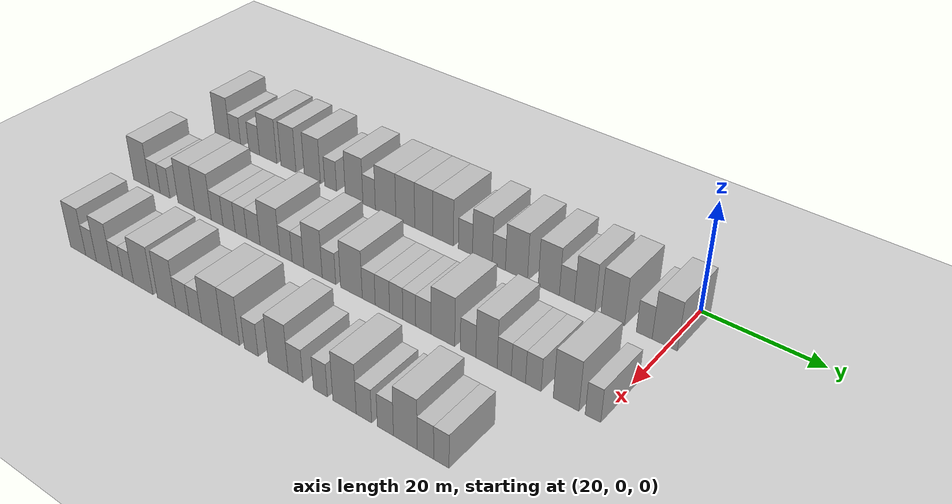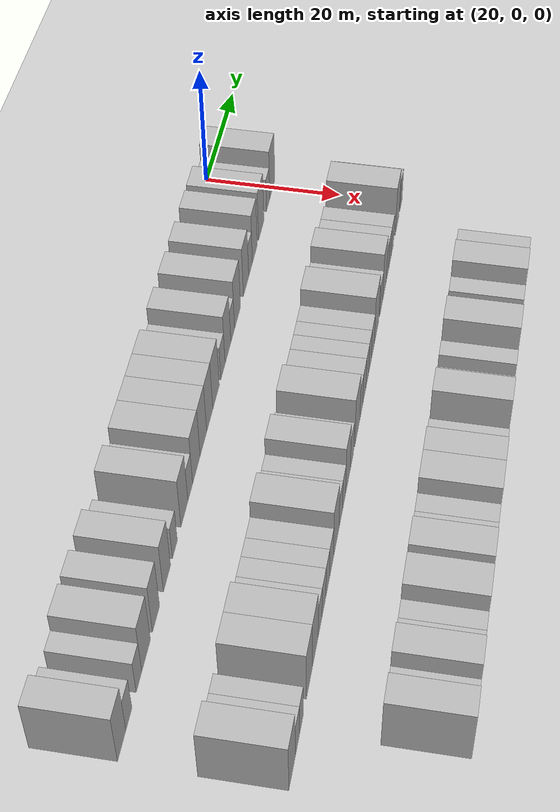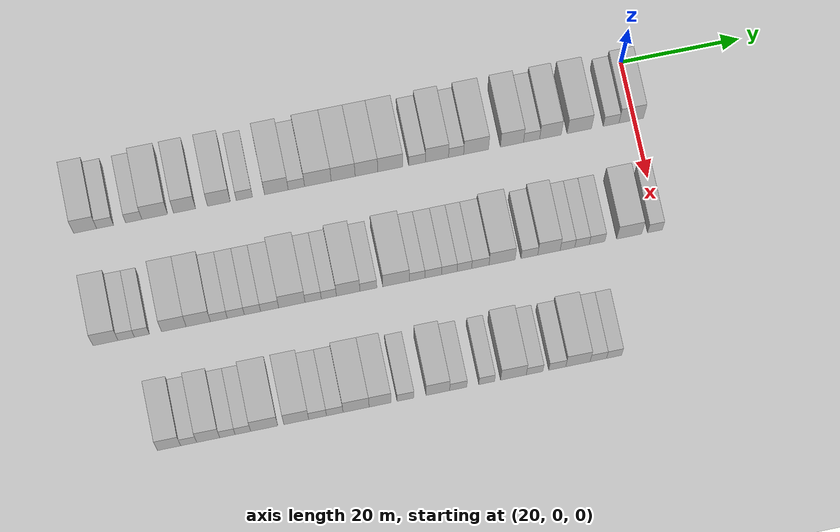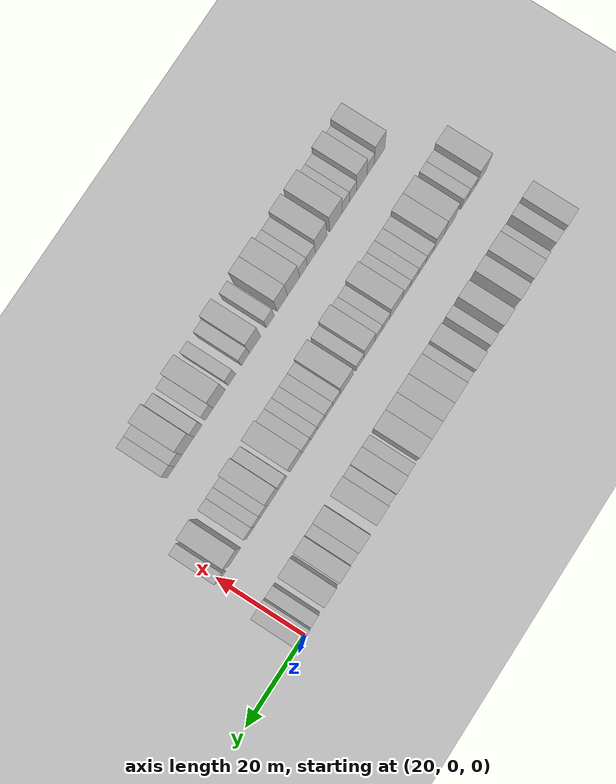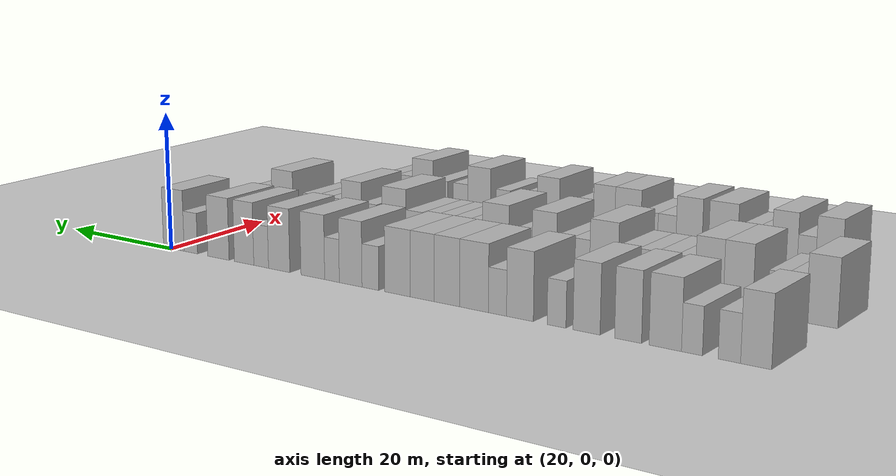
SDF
<sdf version="1.6">
 <world name="default">
  <include><name>ground_plane_1</name><uri>model://HANNAS_ground_plane</uri></include>
  <model name="building_55">
   <static>1</static>
   <pose>25.0000 -92.0047 0 0.000000 0.000000 0.000000</pose>
   <link name="link">
    <pose>0 0 4.50 0 0 0</pose>
    <collision name="collision"><geometry><box><size>10.0000 3.8348 9.0000</size></box></geometry></collision>
    <visual name="visual">
     <cast_shadows>0</cast_shadows>
     <geometry><box><size>10.0000 3.8348 9.0000</size></box></geometry>
     <material>
      <script>
       <uri>model://HANNAS_wall/materials/scripts</uri>
       <uri>model://HANNAS_wall/materials/textures</uri>
       <name>vrc/HANNAS_wall</name>
      </script>
     </material>
    </visual>
   </link>
  </model>
  <model name="building_56">
   <static>1</static>
   <pose>25.0000 -88.6778 0 0.000000 0.000000 0.000000</pose>
   <link name="link">
    <pose>0 0 3.00 0 0 0</pose>
    <collision name="collision"><geometry><box><size>10.0000 2.8190 6.0000</size></box></geometry></collision>
    <visual name="visual">
     <cast_shadows>0</cast_shadows>
     <geometry><box><size>10.0000 2.8190 6.0000</size></box></geometry>
     <material>
      <script>
       <uri>model://HANNAS_wall/materials/scripts</uri>
       <uri>model://HANNAS_wall/materials/textures</uri>
       <name>vrc/HANNAS_wall</name>
      </script>
     </material>
    </visual>
   </link>
  </model>
  <model name="building_57">
   <static>1</static>
   <pose>25.0000 -83.9104 0 0.000000 0.000000 0.000000</pose>
   <link name="link">
    <pose>0 0 3.00 0 0 0</pose>
    <collision name="collision"><geometry><box><size>10.0000 2.7158 6.0000</size></box></geometry></collision>
    <visual name="visual">
     <cast_shadows>0</cast_shadows>
     <geometry><box><size>10.0000 2.7158 6.0000</size></box></geometry>
     <material>
      <script>
       <uri>model://HANNAS_wall/materials/scripts</uri>
       <uri>model://HANNAS_wall/materials/textures</uri>
       <name>vrc/HANNAS_wall</name>
      </script>
     </material>
    </visual>
   </link>
  </model>
  <model name="building_58">
   <static>1</static>
   <pose>25.0000 -80.4101 0 0.000000 0.000000 0.000000</pose>
   <link name="link">
    <pose>0 0 4.50 0 0 0</pose>
    <collision name="collision"><geometry><box><size>10.0000 4.2849 9.0000</size></box></geometry></collision>
    <visual name="visual">
     <cast_shadows>0</cast_shadows>
     <geometry><box><size>10.0000 4.2849 9.0000</size></box></geometry>
     <material>
      <script>
       <uri>model://HANNAS_wall/materials/scripts</uri>
       <uri>model://HANNAS_wall/materials/textures</uri>
       <name>vrc/HANNAS_wall</name>
      </script>
     </material>
    </visual>
   </link>
  </model>
  <model name="building_59">
   <static>1</static>
   <pose>25.0000 -75.4380 0 0.000000 0.000000 0.000000</pose>
   <link name="link">
    <pose>0 0 4.50 0 0 0</pose>
    <collision name="collision"><geometry><box><size>10.0000 3.6594 9.0000</size></box></geometry></collision>
    <visual name="visual">
     <cast_shadows>0</cast_shadows>
     <geometry><box><size>10.0000 3.6594 9.0000</size></box></geometry>
     <material>
      <script>
       <uri>model://HANNAS_wall/materials/scripts</uri>
       <uri>model://HANNAS_wall/materials/textures</uri>
       <name>vrc/HANNAS_wall</name>
      </script>
     </material>
    </visual>
   </link>
  </model>
  <model name="building_60">
   <static>1</static>
   <pose>25.0000 -69.7093 0 0.000000 0.000000 0.000000</pose>
   <link name="link">
    <pose>0 0 4.50 0 0 0</pose>
    <collision name="collision"><geometry><box><size>10.0000 3.7979 9.0000</size></box></geometry></collision>
    <visual name="visual">
     <cast_shadows>0</cast_shadows>
     <geometry><box><size>10.0000 3.7979 9.0000</size></box></geometry>
     <material>
      <script>
       <uri>model://HANNAS_wall/materials/scripts</uri>
       <uri>model://HANNAS_wall/materials/textures</uri>
       <name>vrc/HANNAS_wall</name>
      </script>
     </material>
    </visual>
   </link>
  </model>
  <model name="building_61">
   <static>1</static>
   <pose>25.0000 -65.4548 0 0.000000 0.000000 0.000000</pose>
   <link name="link">
    <pose>0 0 3.00 0 0 0</pose>
    <collision name="collision"><geometry><box><size>10.0000 2.7111 6.0000</size></box></geometry></collision>
    <visual name="visual">
     <cast_shadows>0</cast_shadows>
     <geometry><box><size>10.0000 2.7111 6.0000</size></box></geometry>
     <material>
      <script>
       <uri>model://HANNAS_wall/materials/scripts</uri>
       <uri>model://HANNAS_wall/materials/textures</uri>
       <name>vrc/HANNAS_wall</name>
      </script>
     </material>
    </visual>
   </link>
  </model>
  <model name="building_62">
   <static>1</static>
   <pose>25.0000 -60.1167 0 0.000000 0.000000 0.000000</pose>
   <link name="link">
    <pose>0 0 4.50 0 0 0</pose>
    <collision name="collision"><geometry><box><size>10.0000 3.9651 9.0000</size></box></geometry></collision>
    <visual name="visual">
     <cast_shadows>0</cast_shadows>
     <geometry><box><size>10.0000 3.9651 9.0000</size></box></geometry>
     <material>
      <script>
       <uri>model://HANNAS_wall/materials/scripts</uri>
       <uri>model://HANNAS_wall/materials/textures</uri>
       <name>vrc/HANNAS_wall</name>
      </script>
     </material>
    </visual>
   </link>
  </model>
  <model name="building_63">
   <static>1</static>
   <pose>25.0000 -56.7659 0 0.000000 0.000000 0.000000</pose>
   <link name="link">
    <pose>0 0 3.00 0 0 0</pose>
    <collision name="collision"><geometry><box><size>10.0000 2.7365 6.0000</size></box></geometry></collision>
    <visual name="visual">
     <cast_shadows>0</cast_shadows>
     <geometry><box><size>10.0000 2.7365 6.0000</size></box></geometry>
     <material>
      <script>
       <uri>model://HANNAS_wall/materials/scripts</uri>
       <uri>model://HANNAS_wall/materials/textures</uri>
       <name>vrc/HANNAS_wall</name>
      </script>
     </material>
    </visual>
   </link>
  </model>
  <model name="building_64">
   <static>1</static>
   <pose>25.0000 -53.1716 0 0.000000 0.000000 0.000000</pose>
   <link name="link">
    <pose>0 0 4.50 0 0 0</pose>
    <collision name="collision"><geometry><box><size>10.0000 4.4522 9.0000</size></box></geometry></collision>
    <visual name="visual">
     <cast_shadows>0</cast_shadows>
     <geometry><box><size>10.0000 4.4522 9.0000</size></box></geometry>
     <material>
      <script>
       <uri>model://HANNAS_wall/materials/scripts</uri>
       <uri>model://HANNAS_wall/materials/textures</uri>
       <name>vrc/HANNAS_wall</name>
      </script>
     </material>
    </visual>
   </link>
  </model>
  <model name="building_65">
   <static>1</static>
   <pose>25.0000 -48.9378 0 0.000000 0.000000 0.000000</pose>
   <link name="link">
    <pose>0 0 4.50 0 0 0</pose>
    <collision name="collision"><geometry><box><size>10.0000 4.0152 9.0000</size></box></geometry></collision>
    <visual name="visual">
     <cast_shadows>0</cast_shadows>
     <geometry><box><size>10.0000 4.0152 9.0000</size></box></geometry>
     <material>
      <script>
       <uri>model://HANNAS_wall/materials/scripts</uri>
       <uri>model://HANNAS_wall/materials/textures</uri>
       <name>vrc/HANNAS_wall</name>
      </script>
     </material>
    </visual>
   </link>
  </model>
  <model name="building_66">
   <static>1</static>
   <pose>25.0000 -45.0341 0 0.000000 0.000000 0.000000</pose>
   <link name="link">
    <pose>0 0 4.50 0 0 0</pose>
    <collision name="collision"><geometry><box><size>10.0000 3.7922 9.0000</size></box></geometry></collision>
    <visual name="visual">
     <cast_shadows>0</cast_shadows>
     <geometry><box><size>10.0000 3.7922 9.0000</size></box></geometry>
     <material>
      <script>
       <uri>model://HANNAS_wall/materials/scripts</uri>
       <uri>model://HANNAS_wall/materials/textures</uri>
       <name>vrc/HANNAS_wall</name>
      </script>
     </material>
    </visual>
   </link>
  </model>
  <model name="building_67">
   <static>1</static>
   <pose>25.0000 -41.0500 0 0.000000 0.000000 0.000000</pose>
   <link name="link">
    <pose>0 0 4.50 0 0 0</pose>
    <collision name="collision"><geometry><box><size>10.0000 4.1761 9.0000</size></box></geometry></collision>
    <visual name="visual">
     <cast_shadows>0</cast_shadows>
     <geometry><box><size>10.0000 4.1761 9.0000</size></box></geometry>
     <material>
      <script>
       <uri>model://HANNAS_wall/materials/scripts</uri>
       <uri>model://HANNAS_wall/materials/textures</uri>
       <name>vrc/HANNAS_wall</name>
      </script>
     </material>
    </visual>
   </link>
  </model>
  <model name="building_68">
   <static>1</static>
   <pose>25.0000 -36.5539 0 0.000000 0.000000 0.000000</pose>
   <link name="link">
    <pose>0 0 3.00 0 0 0</pose>
    <collision name="collision"><geometry><box><size>10.0000 2.8160 6.0000</size></box></geometry></collision>
    <visual name="visual">
     <cast_shadows>0</cast_shadows>
     <geometry><box><size>10.0000 2.8160 6.0000</size></box></geometry>
     <material>
      <script>
       <uri>model://HANNAS_wall/materials/scripts</uri>
       <uri>model://HANNAS_wall/materials/textures</uri>
       <name>vrc/HANNAS_wall</name>
      </script>
     </material>
    </visual>
   </link>
  </model>
  <model name="building_69">
   <static>1</static>
   <pose>25.0000 -33.2091 0 0.000000 0.000000 0.000000</pose>
   <link name="link">
    <pose>0 0 4.50 0 0 0</pose>
    <collision name="collision"><geometry><box><size>10.0000 3.8737 9.0000</size></box></geometry></collision>
    <visual name="visual">
     <cast_shadows>0</cast_shadows>
     <geometry><box><size>10.0000 3.8737 9.0000</size></box></geometry>
     <material>
      <script>
       <uri>model://HANNAS_wall/materials/scripts</uri>
       <uri>model://HANNAS_wall/materials/textures</uri>
       <name>vrc/HANNAS_wall</name>
      </script>
     </material>
    </visual>
   </link>
  </model>
  <model name="building_70">
   <static>1</static>
   <pose>25.0000 -30.0039 0 0.000000 0.000000 0.000000</pose>
   <link name="link">
    <pose>0 0 3.00 0 0 0</pose>
    <collision name="collision"><geometry><box><size>10.0000 2.5367 6.0000</size></box></geometry></collision>
    <visual name="visual">
     <cast_shadows>0</cast_shadows>
     <geometry><box><size>10.0000 2.5367 6.0000</size></box></geometry>
     <material>
      <script>
       <uri>model://HANNAS_wall/materials/scripts</uri>
       <uri>model://HANNAS_wall/materials/textures</uri>
       <name>vrc/HANNAS_wall</name>
      </script>
     </material>
    </visual>
   </link>
  </model>
  <model name="building_71">
   <static>1</static>
   <pose>25.0000 -26.6469 0 0.000000 0.000000 0.000000</pose>
   <link name="link">
    <pose>0 0 4.50 0 0 0</pose>
    <collision name="collision"><geometry><box><size>10.0000 4.1772 9.0000</size></box></geometry></collision>
    <visual name="visual">
     <cast_shadows>0</cast_shadows>
     <geometry><box><size>10.0000 4.1772 9.0000</size></box></geometry>
     <material>
      <script>
       <uri>model://HANNAS_wall/materials/scripts</uri>
       <uri>model://HANNAS_wall/materials/textures</uri>
       <name>vrc/HANNAS_wall</name>
      </script>
     </material>
    </visual>
   </link>
  </model>
  <model name="building_72">
   <static>1</static>
   <pose>25.0000 -20.6169 0 0.000000 0.000000 0.000000</pose>
   <link name="link">
    <pose>0 0 4.50 0 0 0</pose>
    <collision name="collision"><geometry><box><size>10.0000 3.8827 9.0000</size></box></geometry></collision>
    <visual name="visual">
     <cast_shadows>0</cast_shadows>
     <geometry><box><size>10.0000 3.8827 9.0000</size></box></geometry>
     <material>
      <script>
       <uri>model://HANNAS_wall/materials/scripts</uri>
       <uri>model://HANNAS_wall/materials/textures</uri>
       <name>vrc/HANNAS_wall</name>
      </script>
     </material>
    </visual>
   </link>
  </model>
  <model name="building_73">
   <static>1</static>
   <pose>25.0000 -17.3195 0 0.000000 0.000000 0.000000</pose>
   <link name="link">
    <pose>0 0 3.00 0 0 0</pose>
    <collision name="collision"><geometry><box><size>10.0000 2.7122 6.0000</size></box></geometry></collision>
    <visual name="visual">
     <cast_shadows>0</cast_shadows>
     <geometry><box><size>10.0000 2.7122 6.0000</size></box></geometry>
     <material>
      <script>
       <uri>model://HANNAS_wall/materials/scripts</uri>
       <uri>model://HANNAS_wall/materials/textures</uri>
       <name>vrc/HANNAS_wall</name>
      </script>
     </material>
    </visual>
   </link>
  </model>
  <model name="building_74">
   <static>1</static>
   <pose>25.0000 -14.1417 0 0.000000 0.000000 0.000000</pose>
   <link name="link">
    <pose>0 0 4.50 0 0 0</pose>
    <collision name="collision"><geometry><box><size>10.0000 3.6433 9.0000</size></box></geometry></collision>
    <visual name="visual">
     <cast_shadows>0</cast_shadows>
     <geometry><box><size>10.0000 3.6433 9.0000</size></box></geometry>
     <material>
      <script>
       <uri>model://HANNAS_wall/materials/scripts</uri>
       <uri>model://HANNAS_wall/materials/textures</uri>
       <name>vrc/HANNAS_wall</name>
      </script>
     </material>
    </visual>
   </link>
  </model>
  <model name="building_75">
   <static>1</static>
   <pose>25.0000 -9.2744 0 0.000000 0.000000 0.000000</pose>
   <link name="link">
    <pose>0 0 4.50 0 0 0</pose>
    <collision name="collision"><geometry><box><size>10.0000 4.0913 9.0000</size></box></geometry></collision>
    <visual name="visual">
     <cast_shadows>0</cast_shadows>
     <geometry><box><size>10.0000 4.0913 9.0000</size></box></geometry>
     <material>
      <script>
       <uri>model://HANNAS_wall/materials/scripts</uri>
       <uri>model://HANNAS_wall/materials/textures</uri>
       <name>vrc/HANNAS_wall</name>
      </script>
     </material>
    </visual>
   </link>
  </model>
  <model name="building_76">
   <static>1</static>
   <pose>25.0000 -3.9061 0 0.000000 0.000000 0.000000</pose>
   <link name="link">
    <pose>0 0 3.00 0 0 0</pose>
    <collision name="collision"><geometry><box><size>10.0000 2.6454 6.0000</size></box></geometry></collision>
    <visual name="visual">
     <cast_shadows>0</cast_shadows>
     <geometry><box><size>10.0000 2.6454 6.0000</size></box></geometry>
     <material>
      <script>
       <uri>model://HANNAS_wall/materials/scripts</uri>
       <uri>model://HANNAS_wall/materials/textures</uri>
       <name>vrc/HANNAS_wall</name>
      </script>
     </material>
    </visual>
   </link>
  </model>
  <model name="building_77">
   <static>1</static>
   <pose>25.0000 -0.5194 0 0.000000 0.000000 0.000000</pose>
   <link name="link">
    <pose>0 0 4.50 0 0 0</pose>
    <collision name="collision"><geometry><box><size>10.0000 4.1279 9.0000</size></box></geometry></collision>
    <visual name="visual">
     <cast_shadows>0</cast_shadows>
     <geometry><box><size>10.0000 4.1279 9.0000</size></box></geometry>
     <material>
      <script>
       <uri>model://HANNAS_wall/materials/scripts</uri>
       <uri>model://HANNAS_wall/materials/textures</uri>
       <name>vrc/HANNAS_wall</name>
      </script>
     </material>
    </visual>
   </link>
  </model>
  <model name="building_232">
   <static>1</static>
   <pose>44.0000 -92.1461 0 0.000000 0.000000 0.000000</pose>
   <link name="link">
    <pose>0 0 4.50 0 0 0</pose>
    <collision name="collision"><geometry><box><size>10.0000 4.1497 9.0000</size></box></geometry></collision>
    <visual name="visual">
     <cast_shadows>0</cast_shadows>
     <geometry><box><size>10.0000 4.1497 9.0000</size></box></geometry>
     <material>
      <script>
       <uri>model://HANNAS_wall/materials/scripts</uri>
       <uri>model://HANNAS_wall/materials/textures</uri>
       <name>vrc/HANNAS_wall</name>
      </script>
     </material>
    </visual>
   </link>
  </model>
  <model name="building_233">
   <static>1</static>
   <pose>44.0000 -88.7218 0 0.000000 0.000000 0.000000</pose>
   <link name="link">
    <pose>0 0 3.00 0 0 0</pose>
    <collision name="collision"><geometry><box><size>10.0000 2.6990 6.0000</size></box></geometry></collision>
    <visual name="visual">
     <cast_shadows>0</cast_shadows>
     <geometry><box><size>10.0000 2.6990 6.0000</size></box></geometry>
     <material>
      <script>
       <uri>model://HANNAS_wall/materials/scripts</uri>
       <uri>model://HANNAS_wall/materials/textures</uri>
       <name>vrc/HANNAS_wall</name>
      </script>
     </material>
    </visual>
   </link>
  </model>
  <model name="building_234">
   <static>1</static>
   <pose>44.0000 -86.1381 0 0.000000 0.000000 0.000000</pose>
   <link name="link">
    <pose>0 0 3.00 0 0 0</pose>
    <collision name="collision"><geometry><box><size>10.0000 2.4685 6.0000</size></box></geometry></collision>
    <visual name="visual">
     <cast_shadows>0</cast_shadows>
     <geometry><box><size>10.0000 2.4685 6.0000</size></box></geometry>
     <material>
      <script>
       <uri>model://HANNAS_wall/materials/scripts</uri>
       <uri>model://HANNAS_wall/materials/textures</uri>
       <name>vrc/HANNAS_wall</name>
      </script>
     </material>
    </visual>
   </link>
  </model>
  <model name="building_235">
   <static>1</static>
   <pose>44.0000 -80.8618 0 0.000000 0.000000 0.000000</pose>
   <link name="link">
    <pose>0 0 4.50 0 0 0</pose>
    <collision name="collision"><geometry><box><size>10.0000 4.0841 9.0000</size></box></geometry></collision>
    <visual name="visual">
     <cast_shadows>0</cast_shadows>
     <geometry><box><size>10.0000 4.0841 9.0000</size></box></geometry>
     <material>
      <script>
       <uri>model://HANNAS_wall/materials/scripts</uri>
       <uri>model://HANNAS_wall/materials/textures</uri>
       <name>vrc/HANNAS_wall</name>
      </script>
     </material>
    </visual>
   </link>
  </model>
  <model name="building_236">
   <static>1</static>
   <pose>44.0000 -76.8111 0 0.000000 0.000000 0.000000</pose>
   <link name="link">
    <pose>0 0 4.50 0 0 0</pose>
    <collision name="collision"><geometry><box><size>10.0000 4.0174 9.0000</size></box></geometry></collision>
    <visual name="visual">
     <cast_shadows>0</cast_shadows>
     <geometry><box><size>10.0000 4.0174 9.0000</size></box></geometry>
     <material>
      <script>
       <uri>model://HANNAS_wall/materials/scripts</uri>
       <uri>model://HANNAS_wall/materials/textures</uri>
       <name>vrc/HANNAS_wall</name>
      </script>
     </material>
    </visual>
   </link>
  </model>
  <model name="building_237">
   <static>1</static>
   <pose>44.0000 -73.4099 0 0.000000 0.000000 0.000000</pose>
   <link name="link">
    <pose>0 0 3.00 0 0 0</pose>
    <collision name="collision"><geometry><box><size>10.0000 2.7848 6.0000</size></box></geometry></collision>
    <visual name="visual">
     <cast_shadows>0</cast_shadows>
     <geometry><box><size>10.0000 2.7848 6.0000</size></box></geometry>
     <material>
      <script>
       <uri>model://HANNAS_wall/materials/scripts</uri>
       <uri>model://HANNAS_wall/materials/textures</uri>
       <name>vrc/HANNAS_wall</name>
      </script>
     </material>
    </visual>
   </link>
  </model>
  <model name="building_238">
   <static>1</static>
   <pose>44.0000 -70.6049 0 0.000000 0.000000 0.000000</pose>
   <link name="link">
    <pose>0 0 3.00 0 0 0</pose>
    <collision name="collision"><geometry><box><size>10.0000 2.8253 6.0000</size></box></geometry></collision>
    <visual name="visual">
     <cast_shadows>0</cast_shadows>
     <geometry><box><size>10.0000 2.8253 6.0000</size></box></geometry>
     <material>
      <script>
       <uri>model://HANNAS_wall/materials/scripts</uri>
       <uri>model://HANNAS_wall/materials/textures</uri>
       <name>vrc/HANNAS_wall</name>
      </script>
     </material>
    </visual>
   </link>
  </model>
  <model name="building_239">
   <static>1</static>
   <pose>44.0000 -67.8445 0 0.000000 0.000000 0.000000</pose>
   <link name="link">
    <pose>0 0 3.00 0 0 0</pose>
    <collision name="collision"><geometry><box><size>10.0000 2.6955 6.0000</size></box></geometry></collision>
    <visual name="visual">
     <cast_shadows>0</cast_shadows>
     <geometry><box><size>10.0000 2.6955 6.0000</size></box></geometry>
     <material>
      <script>
       <uri>model://HANNAS_wall/materials/scripts</uri>
       <uri>model://HANNAS_wall/materials/textures</uri>
       <name>vrc/HANNAS_wall</name>
      </script>
     </material>
    </visual>
   </link>
  </model>
  <model name="building_240">
   <static>1</static>
   <pose>44.0000 -65.0004 0 0.000000 0.000000 0.000000</pose>
   <link name="link">
    <pose>0 0 3.00 0 0 0</pose>
    <collision name="collision"><geometry><box><size>10.0000 2.9927 6.0000</size></box></geometry></collision>
    <visual name="visual">
     <cast_shadows>0</cast_shadows>
     <geometry><box><size>10.0000 2.9927 6.0000</size></box></geometry>
     <material>
      <script>
       <uri>model://HANNAS_wall/materials/scripts</uri>
       <uri>model://HANNAS_wall/materials/textures</uri>
       <name>vrc/HANNAS_wall</name>
      </script>
     </material>
    </visual>
   </link>
  </model>
  <model name="building_241">
   <static>1</static>
   <pose>44.0000 -61.3182 0 0.000000 0.000000 0.000000</pose>
   <link name="link">
    <pose>0 0 4.50 0 0 0</pose>
    <collision name="collision"><geometry><box><size>10.0000 4.3716 9.0000</size></box></geometry></collision>
    <visual name="visual">
     <cast_shadows>0</cast_shadows>
     <geometry><box><size>10.0000 4.3716 9.0000</size></box></geometry>
     <material>
      <script>
       <uri>model://HANNAS_wall/materials/scripts</uri>
       <uri>model://HANNAS_wall/materials/textures</uri>
       <name>vrc/HANNAS_wall</name>
      </script>
     </material>
    </visual>
   </link>
  </model>
  <model name="building_242">
   <static>1</static>
   <pose>44.0000 -57.7804 0 0.000000 0.000000 0.000000</pose>
   <link name="link">
    <pose>0 0 3.00 0 0 0</pose>
    <collision name="collision"><geometry><box><size>10.0000 2.7040 6.0000</size></box></geometry></collision>
    <visual name="visual">
     <cast_shadows>0</cast_shadows>
     <geometry><box><size>10.0000 2.7040 6.0000</size></box></geometry>
     <material>
      <script>
       <uri>model://HANNAS_wall/materials/scripts</uri>
       <uri>model://HANNAS_wall/materials/textures</uri>
       <name>vrc/HANNAS_wall</name>
      </script>
     </material>
    </visual>
   </link>
  </model>
  <model name="building_243">
   <static>1</static>
   <pose>44.0000 -55.1755 0 0.000000 0.000000 0.000000</pose>
   <link name="link">
    <pose>0 0 3.00 0 0 0</pose>
    <collision name="collision"><geometry><box><size>10.0000 2.5058 6.0000</size></box></geometry></collision>
    <visual name="visual">
     <cast_shadows>0</cast_shadows>
     <geometry><box><size>10.0000 2.5058 6.0000</size></box></geometry>
     <material>
      <script>
       <uri>model://HANNAS_wall/materials/scripts</uri>
       <uri>model://HANNAS_wall/materials/textures</uri>
       <name>vrc/HANNAS_wall</name>
      </script>
     </material>
    </visual>
   </link>
  </model>
  <model name="building_244">
   <static>1</static>
   <pose>44.0000 -51.9624 0 0.000000 0.000000 0.000000</pose>
   <link name="link">
    <pose>0 0 4.50 0 0 0</pose>
    <collision name="collision"><geometry><box><size>10.0000 3.9205 9.0000</size></box></geometry></collision>
    <visual name="visual">
     <cast_shadows>0</cast_shadows>
     <geometry><box><size>10.0000 3.9205 9.0000</size></box></geometry>
     <material>
      <script>
       <uri>model://HANNAS_wall/materials/scripts</uri>
       <uri>model://HANNAS_wall/materials/textures</uri>
       <name>vrc/HANNAS_wall</name>
      </script>
     </material>
    </visual>
   </link>
  </model>
  <model name="building_245">
   <static>1</static>
   <pose>44.0000 -48.5975 0 0.000000 0.000000 0.000000</pose>
   <link name="link">
    <pose>0 0 3.00 0 0 0</pose>
    <collision name="collision"><geometry><box><size>10.0000 2.8093 6.0000</size></box></geometry></collision>
    <visual name="visual">
     <cast_shadows>0</cast_shadows>
     <geometry><box><size>10.0000 2.8093 6.0000</size></box></geometry>
     <material>
      <script>
       <uri>model://HANNAS_wall/materials/scripts</uri>
       <uri>model://HANNAS_wall/materials/textures</uri>
       <name>vrc/HANNAS_wall</name>
      </script>
     </material>
    </visual>
   </link>
  </model>
  <model name="building_246">
   <static>1</static>
   <pose>44.0000 -43.9951 0 0.000000 0.000000 0.000000</pose>
   <link name="link">
    <pose>0 0 4.50 0 0 0</pose>
    <collision name="collision"><geometry><box><size>10.0000 4.3953 9.0000</size></box></geometry></collision>
    <visual name="visual">
     <cast_shadows>0</cast_shadows>
     <geometry><box><size>10.0000 4.3953 9.0000</size></box></geometry>
     <material>
      <script>
       <uri>model://HANNAS_wall/materials/scripts</uri>
       <uri>model://HANNAS_wall/materials/textures</uri>
       <name>vrc/HANNAS_wall</name>
      </script>
     </material>
    </visual>
   </link>
  </model>
  <model name="building_247">
   <static>1</static>
   <pose>44.0000 -40.5078 0 0.000000 0.000000 0.000000</pose>
   <link name="link">
    <pose>0 0 3.00 0 0 0</pose>
    <collision name="collision"><geometry><box><size>10.0000 2.5794 6.0000</size></box></geometry></collision>
    <visual name="visual">
     <cast_shadows>0</cast_shadows>
     <geometry><box><size>10.0000 2.5794 6.0000</size></box></geometry>
     <material>
      <script>
       <uri>model://HANNAS_wall/materials/scripts</uri>
       <uri>model://HANNAS_wall/materials/textures</uri>
       <name>vrc/HANNAS_wall</name>
      </script>
     </material>
    </visual>
   </link>
  </model>
  <model name="building_248">
   <static>1</static>
   <pose>44.0000 -37.8111 0 0.000000 0.000000 0.000000</pose>
   <link name="link">
    <pose>0 0 3.00 0 0 0</pose>
    <collision name="collision"><geometry><box><size>10.0000 2.8139 6.0000</size></box></geometry></collision>
    <visual name="visual">
     <cast_shadows>0</cast_shadows>
     <geometry><box><size>10.0000 2.8139 6.0000</size></box></geometry>
     <material>
      <script>
       <uri>model://HANNAS_wall/materials/scripts</uri>
       <uri>model://HANNAS_wall/materials/textures</uri>
       <name>vrc/HANNAS_wall</name>
      </script>
     </material>
    </visual>
   </link>
  </model>
  <model name="building_249">
   <static>1</static>
   <pose>44.0000 -35.1178 0 0.000000 0.000000 0.000000</pose>
   <link name="link">
    <pose>0 0 3.00 0 0 0</pose>
    <collision name="collision"><geometry><box><size>10.0000 2.5728 6.0000</size></box></geometry></collision>
    <visual name="visual">
     <cast_shadows>0</cast_shadows>
     <geometry><box><size>10.0000 2.5728 6.0000</size></box></geometry>
     <material>
      <script>
       <uri>model://HANNAS_wall/materials/scripts</uri>
       <uri>model://HANNAS_wall/materials/textures</uri>
       <name>vrc/HANNAS_wall</name>
      </script>
     </material>
    </visual>
   </link>
  </model>
  <model name="building_250">
   <static>1</static>
   <pose>44.0000 -32.6200 0 0.000000 0.000000 0.000000</pose>
   <link name="link">
    <pose>0 0 3.00 0 0 0</pose>
    <collision name="collision"><geometry><box><size>10.0000 2.4228 6.0000</size></box></geometry></collision>
    <visual name="visual">
     <cast_shadows>0</cast_shadows>
     <geometry><box><size>10.0000 2.4228 6.0000</size></box></geometry>
     <material>
      <script>
       <uri>model://HANNAS_wall/materials/scripts</uri>
       <uri>model://HANNAS_wall/materials/textures</uri>
       <name>vrc/HANNAS_wall</name>
      </script>
     </material>
    </visual>
   </link>
  </model>
  <model name="building_251">
   <static>1</static>
   <pose>44.0000 -29.9630 0 0.000000 0.000000 0.000000</pose>
   <link name="link">
    <pose>0 0 3.00 0 0 0</pose>
    <collision name="collision"><geometry><box><size>10.0000 2.8912 6.0000</size></box></geometry></collision>
    <visual name="visual">
     <cast_shadows>0</cast_shadows>
     <geometry><box><size>10.0000 2.8912 6.0000</size></box></geometry>
     <material>
      <script>
       <uri>model://HANNAS_wall/materials/scripts</uri>
       <uri>model://HANNAS_wall/materials/textures</uri>
       <name>vrc/HANNAS_wall</name>
      </script>
     </material>
    </visual>
   </link>
  </model>
  <model name="building_252">
   <static>1</static>
   <pose>44.0000 -26.3432 0 0.000000 0.000000 0.000000</pose>
   <link name="link">
    <pose>0 0 4.50 0 0 0</pose>
    <collision name="collision"><geometry><box><size>10.0000 4.3484 9.0000</size></box></geometry></collision>
    <visual name="visual">
     <cast_shadows>0</cast_shadows>
     <geometry><box><size>10.0000 4.3484 9.0000</size></box></geometry>
     <material>
      <script>
       <uri>model://HANNAS_wall/materials/scripts</uri>
       <uri>model://HANNAS_wall/materials/textures</uri>
       <name>vrc/HANNAS_wall</name>
      </script>
     </material>
    </visual>
   </link>
  </model>
  <model name="building_253">
   <static>1</static>
   <pose>44.0000 -21.7752 0 0.000000 0.000000 0.000000</pose>
   <link name="link">
    <pose>0 0 3.00 0 0 0</pose>
    <collision name="collision"><geometry><box><size>10.0000 2.7875 6.0000</size></box></geometry></collision>
    <visual name="visual">
     <cast_shadows>0</cast_shadows>
     <geometry><box><size>10.0000 2.7875 6.0000</size></box></geometry>
     <material>
      <script>
       <uri>model://HANNAS_wall/materials/scripts</uri>
       <uri>model://HANNAS_wall/materials/textures</uri>
       <name>vrc/HANNAS_wall</name>
      </script>
     </material>
    </visual>
   </link>
  </model>
  <model name="building_254">
   <static>1</static>
   <pose>44.0000 -18.5149 0 0.000000 0.000000 0.000000</pose>
   <link name="link">
    <pose>0 0 4.50 0 0 0</pose>
    <collision name="collision"><geometry><box><size>10.0000 3.7332 9.0000</size></box></geometry></collision>
    <visual name="visual">
     <cast_shadows>0</cast_shadows>
     <geometry><box><size>10.0000 3.7332 9.0000</size></box></geometry>
     <material>
      <script>
       <uri>model://HANNAS_wall/materials/scripts</uri>
       <uri>model://HANNAS_wall/materials/textures</uri>
       <name>vrc/HANNAS_wall</name>
      </script>
     </material>
    </visual>
   </link>
  </model>
  <model name="building_255">
   <static>1</static>
   <pose>44.0000 -15.4252 0 0.000000 0.000000 0.000000</pose>
   <link name="link">
    <pose>0 0 3.00 0 0 0</pose>
    <collision name="collision"><geometry><box><size>10.0000 2.4463 6.0000</size></box></geometry></collision>
    <visual name="visual">
     <cast_shadows>0</cast_shadows>
     <geometry><box><size>10.0000 2.4463 6.0000</size></box></geometry>
     <material>
      <script>
       <uri>model://HANNAS_wall/materials/scripts</uri>
       <uri>model://HANNAS_wall/materials/textures</uri>
       <name>vrc/HANNAS_wall</name>
      </script>
     </material>
    </visual>
   </link>
  </model>
  <model name="building_256">
   <static>1</static>
   <pose>44.0000 -12.9975 0 0.000000 0.000000 0.000000</pose>
   <link name="link">
    <pose>0 0 3.00 0 0 0</pose>
    <collision name="collision"><geometry><box><size>10.0000 2.4092 6.0000</size></box></geometry></collision>
    <visual name="visual">
     <cast_shadows>0</cast_shadows>
     <geometry><box><size>10.0000 2.4092 6.0000</size></box></geometry>
     <material>
      <script>
       <uri>model://HANNAS_wall/materials/scripts</uri>
       <uri>model://HANNAS_wall/materials/textures</uri>
       <name>vrc/HANNAS_wall</name>
      </script>
     </material>
    </visual>
   </link>
  </model>
  <model name="building_257">
   <static>1</static>
   <pose>44.0000 -10.4841 0 0.000000 0.000000 0.000000</pose>
   <link name="link">
    <pose>0 0 3.00 0 0 0</pose>
    <collision name="collision"><geometry><box><size>10.0000 2.6175 6.0000</size></box></geometry></collision>
    <visual name="visual">
     <cast_shadows>0</cast_shadows>
     <geometry><box><size>10.0000 2.6175 6.0000</size></box></geometry>
     <material>
      <script>
       <uri>model://HANNAS_wall/materials/scripts</uri>
       <uri>model://HANNAS_wall/materials/textures</uri>
       <name>vrc/HANNAS_wall</name>
      </script>
     </material>
    </visual>
   </link>
  </model>
  <model name="building_258">
   <static>1</static>
   <pose>44.0000 -5.0906 0 0.000000 0.000000 0.000000</pose>
   <link name="link">
    <pose>0 0 4.50 0 0 0</pose>
    <collision name="collision"><geometry><box><size>10.0000 4.1695 9.0000</size></box></geometry></collision>
    <visual name="visual">
     <cast_shadows>0</cast_shadows>
     <geometry><box><size>10.0000 4.1695 9.0000</size></box></geometry>
     <material>
      <script>
       <uri>model://HANNAS_wall/materials/scripts</uri>
       <uri>model://HANNAS_wall/materials/textures</uri>
       <name>vrc/HANNAS_wall</name>
      </script>
     </material>
    </visual>
   </link>
  </model>
  <model name="building_259">
   <static>1</static>
   <pose>44.0000 -0.7762 0 0.000000 0.000000 0.000000</pose>
   <link name="link">
    <pose>0 0 3.00 0 0 0</pose>
    <collision name="collision"><geometry><box><size>10.0000 2.4594 6.0000</size></box></geometry></collision>
    <visual name="visual">
     <cast_shadows>0</cast_shadows>
     <geometry><box><size>10.0000 2.4594 6.0000</size></box></geometry>
     <material>
      <script>
       <uri>model://HANNAS_wall/materials/scripts</uri>
       <uri>model://HANNAS_wall/materials/textures</uri>
       <name>vrc/HANNAS_wall</name>
      </script>
     </material>
    </visual>
   </link>
  </model>
  <model name="building_391">
   <static>1</static>
   <pose>63.0000 -85.2837 0 0.000000 0.000000 0.000000</pose>
   <link name="link">
    <pose>0 0 4.50 0 0 0</pose>
    <collision name="collision"><geometry><box><size>10.0000 3.8033 9.0000</size></box></geometry></collision>
    <visual name="visual">
     <cast_shadows>0</cast_shadows>
     <geometry><box><size>10.0000 3.8033 9.0000</size></box></geometry>
     <material>
      <script>
       <uri>model://HANNAS_wall/materials/scripts</uri>
       <uri>model://HANNAS_wall/materials/textures</uri>
       <name>vrc/HANNAS_wall</name>
      </script>
     </material>
    </visual>
   </link>
  </model>
  <model name="building_392">
   <static>1</static>
   <pose>63.0000 -82.0651 0 0.000000 0.000000 0.000000</pose>
   <link name="link">
    <pose>0 0 3.00 0 0 0</pose>
    <collision name="collision"><geometry><box><size>10.0000 2.6340 6.0000</size></box></geometry></collision>
    <visual name="visual">
     <cast_shadows>0</cast_shadows>
     <geometry><box><size>10.0000 2.6340 6.0000</size></box></geometry>
     <material>
      <script>
       <uri>model://HANNAS_wall/materials/scripts</uri>
       <uri>model://HANNAS_wall/materials/textures</uri>
       <name>vrc/HANNAS_wall</name>
      </script>
     </material>
    </visual>
   </link>
  </model>
  <model name="building_393">
   <static>1</static>
   <pose>63.0000 -78.8591 0 0.000000 0.000000 0.000000</pose>
   <link name="link">
    <pose>0 0 4.50 0 0 0</pose>
    <collision name="collision"><geometry><box><size>10.0000 3.7778 9.0000</size></box></geometry></collision>
    <visual name="visual">
     <cast_shadows>0</cast_shadows>
     <geometry><box><size>10.0000 3.7778 9.0000</size></box></geometry>
     <material>
      <script>
       <uri>model://HANNAS_wall/materials/scripts</uri>
       <uri>model://HANNAS_wall/materials/textures</uri>
       <name>vrc/HANNAS_wall</name>
      </script>
     </material>
    </visual>
   </link>
  </model>
  <model name="building_394">
   <static>1</static>
   <pose>63.0000 -75.7006 0 0.000000 0.000000 0.000000</pose>
   <link name="link">
    <pose>0 0 3.00 0 0 0</pose>
    <collision name="collision"><geometry><box><size>10.0000 2.5393 6.0000</size></box></geometry></collision>
    <visual name="visual">
     <cast_shadows>0</cast_shadows>
     <geometry><box><size>10.0000 2.5393 6.0000</size></box></geometry>
     <material>
      <script>
       <uri>model://HANNAS_wall/materials/scripts</uri>
       <uri>model://HANNAS_wall/materials/textures</uri>
       <name>vrc/HANNAS_wall</name>
      </script>
     </material>
    </visual>
   </link>
  </model>
  <model name="building_395">
   <static>1</static>
   <pose>63.0000 -73.1567 0 0.000000 0.000000 0.000000</pose>
   <link name="link">
    <pose>0 0 3.00 0 0 0</pose>
    <collision name="collision"><geometry><box><size>10.0000 2.5484 6.0000</size></box></geometry></collision>
    <visual name="visual">
     <cast_shadows>0</cast_shadows>
     <geometry><box><size>10.0000 2.5484 6.0000</size></box></geometry>
     <material>
      <script>
       <uri>model://HANNAS_wall/materials/scripts</uri>
       <uri>model://HANNAS_wall/materials/textures</uri>
       <name>vrc/HANNAS_wall</name>
      </script>
     </material>
    </visual>
   </link>
  </model>
  <model name="building_396">
   <static>1</static>
   <pose>63.0000 -69.6520 0 0.000000 0.000000 0.000000</pose>
   <link name="link">
    <pose>0 0 4.50 0 0 0</pose>
    <collision name="collision"><geometry><box><size>10.0000 4.4612 9.0000</size></box></geometry></collision>
    <visual name="visual">
     <cast_shadows>0</cast_shadows>
     <geometry><box><size>10.0000 4.4612 9.0000</size></box></geometry>
     <material>
      <script>
       <uri>model://HANNAS_wall/materials/scripts</uri>
       <uri>model://HANNAS_wall/materials/textures</uri>
       <name>vrc/HANNAS_wall</name>
      </script>
     </material>
    </visual>
   </link>
  </model>
  <model name="building_397">
   <static>1</static>
   <pose>63.0000 -64.3731 0 0.000000 0.000000 0.000000</pose>
   <link name="link">
    <pose>0 0 4.50 0 0 0</pose>
    <collision name="collision"><geometry><box><size>10.0000 4.0965 9.0000</size></box></geometry></collision>
    <visual name="visual">
     <cast_shadows>0</cast_shadows>
     <geometry><box><size>10.0000 4.0965 9.0000</size></box></geometry>
     <material>
      <script>
       <uri>model://HANNAS_wall/materials/scripts</uri>
       <uri>model://HANNAS_wall/materials/textures</uri>
       <name>vrc/HANNAS_wall</name>
      </script>
     </material>
    </visual>
   </link>
  </model>
  <model name="building_398">
   <static>1</static>
   <pose>63.0000 -60.8603 0 0.000000 0.000000 0.000000</pose>
   <link name="link">
    <pose>0 0 3.00 0 0 0</pose>
    <collision name="collision"><geometry><box><size>10.0000 2.9292 6.0000</size></box></geometry></collision>
    <visual name="visual">
     <cast_shadows>0</cast_shadows>
     <geometry><box><size>10.0000 2.9292 6.0000</size></box></geometry>
     <material>
      <script>
       <uri>model://HANNAS_wall/materials/scripts</uri>
       <uri>model://HANNAS_wall/materials/textures</uri>
       <name>vrc/HANNAS_wall</name>
      </script>
     </material>
    </visual>
   </link>
  </model>
  <model name="building_399">
   <static>1</static>
   <pose>63.0000 -58.0331 0 0.000000 0.000000 0.000000</pose>
   <link name="link">
    <pose>0 0 3.00 0 0 0</pose>
    <collision name="collision"><geometry><box><size>10.0000 2.7254 6.0000</size></box></geometry></collision>
    <visual name="visual">
     <cast_shadows>0</cast_shadows>
     <geometry><box><size>10.0000 2.7254 6.0000</size></box></geometry>
     <material>
      <script>
       <uri>model://HANNAS_wall/materials/scripts</uri>
       <uri>model://HANNAS_wall/materials/textures</uri>
       <name>vrc/HANNAS_wall</name>
      </script>
     </material>
    </visual>
   </link>
  </model>
  <model name="building_400">
   <static>1</static>
   <pose>63.0000 -54.5184 0 0.000000 0.000000 0.000000</pose>
   <link name="link">
    <pose>0 0 4.50 0 0 0</pose>
    <collision name="collision"><geometry><box><size>10.0000 4.3039 9.0000</size></box></geometry></collision>
    <visual name="visual">
     <cast_shadows>0</cast_shadows>
     <geometry><box><size>10.0000 4.3039 9.0000</size></box></geometry>
     <material>
      <script>
       <uri>model://HANNAS_wall/materials/scripts</uri>
       <uri>model://HANNAS_wall/materials/textures</uri>
       <name>vrc/HANNAS_wall</name>
      </script>
     </material>
    </visual>
   </link>
  </model>
  <model name="building_401">
   <static>1</static>
   <pose>63.0000 -50.5577 0 0.000000 0.000000 0.000000</pose>
   <link name="link">
    <pose>0 0 4.50 0 0 0</pose>
    <collision name="collision"><geometry><box><size>10.0000 3.6176 9.0000</size></box></geometry></collision>
    <visual name="visual">
     <cast_shadows>0</cast_shadows>
     <geometry><box><size>10.0000 3.6176 9.0000</size></box></geometry>
     <material>
      <script>
       <uri>model://HANNAS_wall/materials/scripts</uri>
       <uri>model://HANNAS_wall/materials/textures</uri>
       <name>vrc/HANNAS_wall</name>
      </script>
     </material>
    </visual>
   </link>
  </model>
  <model name="building_402">
   <static>1</static>
   <pose>63.0000 -46.3531 0 0.000000 0.000000 0.000000</pose>
   <link name="link">
    <pose>0 0 3.00 0 0 0</pose>
    <collision name="collision"><geometry><box><size>10.0000 2.7916 6.0000</size></box></geometry></collision>
    <visual name="visual">
     <cast_shadows>0</cast_shadows>
     <geometry><box><size>10.0000 2.7916 6.0000</size></box></geometry>
     <material>
      <script>
       <uri>model://HANNAS_wall/materials/scripts</uri>
       <uri>model://HANNAS_wall/materials/textures</uri>
       <name>vrc/HANNAS_wall</name>
      </script>
     </material>
    </visual>
   </link>
  </model>
  <model name="building_403">
   <static>1</static>
   <pose>63.0000 -41.0151 0 0.000000 0.000000 0.000000</pose>
   <link name="link">
    <pose>0 0 4.50 0 0 0</pose>
    <collision name="collision"><geometry><box><size>10.0000 3.8844 9.0000</size></box></geometry></collision>
    <visual name="visual">
     <cast_shadows>0</cast_shadows>
     <geometry><box><size>10.0000 3.8844 9.0000</size></box></geometry>
     <material>
      <script>
       <uri>model://HANNAS_wall/materials/scripts</uri>
       <uri>model://HANNAS_wall/materials/textures</uri>
       <name>vrc/HANNAS_wall</name>
      </script>
     </material>
    </visual>
   </link>
  </model>
  <model name="building_404">
   <static>1</static>
   <pose>63.0000 -37.6531 0 0.000000 0.000000 0.000000</pose>
   <link name="link">
    <pose>0 0 3.00 0 0 0</pose>
    <collision name="collision"><geometry><box><size>10.0000 2.8397 6.0000</size></box></geometry></collision>
    <visual name="visual">
     <cast_shadows>0</cast_shadows>
     <geometry><box><size>10.0000 2.8397 6.0000</size></box></geometry>
     <material>
      <script>
       <uri>model://HANNAS_wall/materials/scripts</uri>
       <uri>model://HANNAS_wall/materials/textures</uri>
       <name>vrc/HANNAS_wall</name>
      </script>
     </material>
    </visual>
   </link>
  </model>
  <model name="building_405">
   <static>1</static>
   <pose>63.0000 -32.9352 0 0.000000 0.000000 0.000000</pose>
   <link name="link">
    <pose>0 0 3.00 0 0 0</pose>
    <collision name="collision"><geometry><box><size>10.0000 2.5960 6.0000</size></box></geometry></collision>
    <visual name="visual">
     <cast_shadows>0</cast_shadows>
     <geometry><box><size>10.0000 2.5960 6.0000</size></box></geometry>
     <material>
      <script>
       <uri>model://HANNAS_wall/materials/scripts</uri>
       <uri>model://HANNAS_wall/materials/textures</uri>
       <name>vrc/HANNAS_wall</name>
      </script>
     </material>
    </visual>
   </link>
  </model>
  <model name="building_406">
   <static>1</static>
   <pose>63.0000 -28.5134 0 0.000000 0.000000 0.000000</pose>
   <link name="link">
    <pose>0 0 4.50 0 0 0</pose>
    <collision name="collision"><geometry><box><size>10.0000 4.2476 9.0000</size></box></geometry></collision>
    <visual name="visual">
     <cast_shadows>0</cast_shadows>
     <geometry><box><size>10.0000 4.2476 9.0000</size></box></geometry>
     <material>
      <script>
       <uri>model://HANNAS_wall/materials/scripts</uri>
       <uri>model://HANNAS_wall/materials/textures</uri>
       <name>vrc/HANNAS_wall</name>
      </script>
     </material>
    </visual>
   </link>
  </model>
  <model name="building_407">
   <static>1</static>
   <pose>63.0000 -25.0209 0 0.000000 0.000000 0.000000</pose>
   <link name="link">
    <pose>0 0 3.00 0 0 0</pose>
    <collision name="collision"><geometry><box><size>10.0000 2.7374 6.0000</size></box></geometry></collision>
    <visual name="visual">
     <cast_shadows>0</cast_shadows>
     <geometry><box><size>10.0000 2.7374 6.0000</size></box></geometry>
     <material>
      <script>
       <uri>model://HANNAS_wall/materials/scripts</uri>
       <uri>model://HANNAS_wall/materials/textures</uri>
       <name>vrc/HANNAS_wall</name>
      </script>
     </material>
    </visual>
   </link>
  </model>
  <model name="building_408">
   <static>1</static>
   <pose>63.0000 -21.2546 0 0.000000 0.000000 0.000000</pose>
   <link name="link">
    <pose>0 0 3.00 0 0 0</pose>
    <collision name="collision"><geometry><box><size>10.0000 2.7952 6.0000</size></box></geometry></collision>
    <visual name="visual">
     <cast_shadows>0</cast_shadows>
     <geometry><box><size>10.0000 2.7952 6.0000</size></box></geometry>
     <material>
      <script>
       <uri>model://HANNAS_wall/materials/scripts</uri>
       <uri>model://HANNAS_wall/materials/textures</uri>
       <name>vrc/HANNAS_wall</name>
      </script>
     </material>
    </visual>
   </link>
  </model>
  <model name="building_409">
   <static>1</static>
   <pose>63.0000 -17.8348 0 0.000000 0.000000 0.000000</pose>
   <link name="link">
    <pose>0 0 4.50 0 0 0</pose>
    <collision name="collision"><geometry><box><size>10.0000 4.0445 9.0000</size></box></geometry></collision>
    <visual name="visual">
     <cast_shadows>0</cast_shadows>
     <geometry><box><size>10.0000 4.0445 9.0000</size></box></geometry>
     <material>
      <script>
       <uri>model://HANNAS_wall/materials/scripts</uri>
       <uri>model://HANNAS_wall/materials/textures</uri>
       <name>vrc/HANNAS_wall</name>
      </script>
     </material>
    </visual>
   </link>
  </model>
  <model name="building_410">
   <static>1</static>
   <pose>63.0000 -14.4554 0 0.000000 0.000000 0.000000</pose>
   <link name="link">
    <pose>0 0 3.00 0 0 0</pose>
    <collision name="collision"><geometry><box><size>10.0000 2.7144 6.0000</size></box></geometry></collision>
    <visual name="visual">
     <cast_shadows>0</cast_shadows>
     <geometry><box><size>10.0000 2.7144 6.0000</size></box></geometry>
     <material>
      <script>
       <uri>model://HANNAS_wall/materials/scripts</uri>
       <uri>model://HANNAS_wall/materials/textures</uri>
       <name>vrc/HANNAS_wall</name>
      </script>
     </material>
    </visual>
   </link>
  </model>
  <model name="building_411">
   <static>1</static>
   <pose>63.0000 -11.8374 0 0.000000 0.000000 0.000000</pose>
   <link name="link">
    <pose>0 0 3.00 0 0 0</pose>
    <collision name="collision"><geometry><box><size>10.0000 2.5216 6.0000</size></box></geometry></collision>
    <visual name="visual">
     <cast_shadows>0</cast_shadows>
     <geometry><box><size>10.0000 2.5216 6.0000</size></box></geometry>
     <material>
      <script>
       <uri>model://HANNAS_wall/materials/scripts</uri>
       <uri>model://HANNAS_wall/materials/textures</uri>
       <name>vrc/HANNAS_wall</name>
      </script>
     </material>
    </visual>
   </link>
  </model>
 </world>
</sdf>
